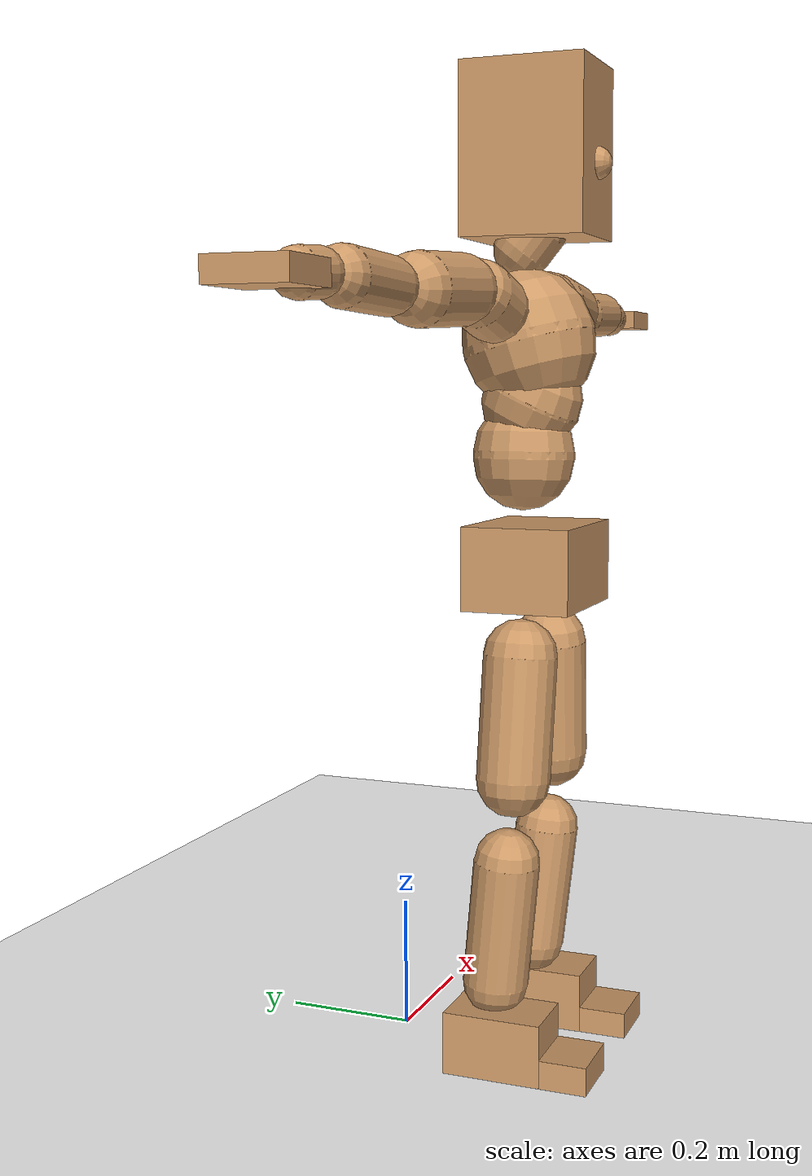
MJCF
<mujoco model="humanoid">
  <option integrator="implicitfast" />

  <visual>
    <global offwidth="1280" offheight="960" />
    <headlight active="1" ambient="0.34 0.34 0.34" diffuse="0.5 0.5 0.5" />
  </visual>

  <default>
    <joint damping="2" stiffness="2" armature="0.01" limited="true" solimplimit="0 .99 .01" />
    <geom condim="1" friction="0.7 0.005 0.0001" solimp=".99 .99 .003" solref="0.015 1" margin="0.001" rgba="0.8 0.6 .4 1" />
    <default class="smplcontact">
      <geom condim="3" friction="1. 0.005 0.0001" solref="0.015 1" solimp="0.98 0.98 0.001" priority="1" />
    </default>
    <default class="stiff_medium">
      <joint stiffness="10" />
    </default>
    <default class="stiff_medium_higher">
      <joint stiffness="50" />
    </default>
    <default class="stiff_high">
      <joint stiffness="100" />
    </default>
  </default>

  <asset>
    <texture type="skybox" builtin="gradient" rgb1="0.99 0.99 0.99" rgb2="0.608 0.828 0.892" width="100" />
    <texture builtin="flat" height="1278" mark="cross" markrgb="1 1 1" name="texgeom" random="0.01" rgb1="0.8 0.6 0.4" rgb2="0.8 0.6 0.4" type="cube" width="127" />
    <texture name="texplane" type="2d" builtin="checker" markrgb="1 1 1" rgb1="0.756 0.772 0.76" rgb2="0.6 0.6 0.6" width="100" height="100" />
    <material name="MatPlane" reflectance="0.5" texture="texplane" texrepeat="1 1" texuniform="true" />
    <material name="geom" texture="texgeom" texuniform="true" />
  </asset>

  <worldbody>
    <light name="tracking_light" pos="0 0 7" dir="0 0 -1" directional="true" cutoff="100" exponent="1" diffuse="1 1 1" specular="0.1 0.1 0.1" mode="trackcom" />
    <camera name="back" pos="0 3 2.4" xyaxes="-1 0 0 0 -1 2" mode="trackcom" />
    <camera name="side" pos="-3 0 2.4" xyaxes="0 -1 0 1 0 2" mode="trackcom" />
    <camera name="front_side" pos="-2.8 -2.8 0.8" xyaxes="0.5 -0.5 0 0.1 0.1 1" mode="trackcom" />
    <geom condim="3" name="floor" pos="0 0 0" rgba="1 1 1 1" size="100 100 .2" type="plane" material="MatPlane" />
    <body name="Pelvis" pos="-0.0018 -0.2233 0.763979" euler="90 0 0">
      <site name="Pelvis" size="0.01" />
      <freejoint name="Pelvis" />
      <geom type="box" pos="0 -0.0104433 -0.0054362" size="0.10566 0.0623148 0.0820372" quat="1.0000 0.0000 0.0000 0.0000" density="3165.830099" name="Pelvis" />
      <body name="L_Hip" pos="0.0686938 -0.0788861 -0.00672112">
        <joint name="L_Hip_x" type="hinge" pos="0 0 0" axis="1 0 0" stiffness="10" range="-160.0 22.92" class="stiff_medium" damping="15" />
        <joint name="L_Hip_y" type="hinge" pos="0 0 0" axis="0 1 0" stiffness="10" range="-70.0 70.0" class="stiff_medium" damping="10" />
        <joint name="L_Hip_z" type="hinge" pos="0 0 0" axis="0 0 1" stiffness="10" range="-28.65 90.0" class="stiff_medium" damping="10" />
        <geom type="capsule" density="2040.816327" fromto="0.00549856 -0.0596756 -0.000716199 0.0218101 -0.238864 -0.00286455" size="0.0560388" name="L_Hip" />
        <body name="L_Knee" pos="0.0273086 -0.298539 -0.00358075">
          <joint name="L_Knee_x" type="hinge" pos="0 0 0" axis="1 0 0" range="-5.16 171.89" damping="8" />
          <joint name="L_Knee_y" type="hinge" pos="0 0 0" axis="0 1 0" range="-4.58 6.88" damping="8" />
          <joint name="L_Knee_z" type="hinge" pos="0 0 0" axis="0 0 1" range="-6.88 4.58" damping="8" />
          <geom type="capsule" density="1234.567901" fromto="-0.00214453 -0.0633375 -0.00691486 -0.00866915 -0.253347 -0.0278414" size="0.0492959" name="L_Knee" />
          <body name="L_Ankle" pos="-0.0108137 -0.316684 -0.0347562">
            <joint name="L_Ankle_x" type="hinge" pos="0 0 0" axis="1 0 0" range="-45.84 45.84" class="stiff_medium" damping="6" />
            <joint name="L_Ankle_y" type="hinge" pos="0 0 0" axis="0 1 0" range="-74.48 22.92" class="stiff_medium" damping="3" />
            <joint name="L_Ankle_z" type="hinge" pos="0 0 0" axis="0 0 1" range="-4.58 4.58" class="stiff_medium" damping="6" />
            <geom type="box" pos="0.0230297 -0.0236228 0.0209907" size="0.0477397 0.0458618 0.0737278" quat="1.0000 0.0000 0.0000 0.0000" density="449.071558" name="L_Ankle" class="smplcontact" />
            <body name="L_Toe" pos="0.0260938 -0.0551527 0.103479">
              <joint name="L_Toe_x" type="hinge" pos="0 0 0" axis="1 0 0" range="-91.67 22.92" />
              <joint name="L_Toe_y" type="hinge" pos="0 0 0" axis="0 1 0" range="-4.58 4.58" />
              <joint name="L_Toe_z" type="hinge" pos="0 0 0" axis="0 0 1" range="-4.58 4.58" />
              <geom type="box" pos="-0.0029652 0.0054362 0.0215112" size="0.0472455 0.019768 0.0430223" quat="1.0000 0.0000 0.0000 0.0000" density="423.206892" name="L_Toe" class="smplcontact" />
            </body>
          </body>
        </body>
      </body>
      <body name="R_Hip" pos="-0.0669147 -0.0781093 -0.00425012">
        <joint name="R_Hip_x" type="hinge" pos="0 0 0" axis="1 0 0" stiffness="10" range="-160.0 22.92" class="stiff_medium" damping="15" />
        <joint name="R_Hip_y" type="hinge" pos="0 0 0" axis="0 1 0" stiffness="10" range="-70.0 70.0" class="stiff_medium" damping="10" />
        <joint name="R_Hip_z" type="hinge" pos="0 0 0" axis="0 0 1" stiffness="10" range="-90.0 28.65" class="stiff_medium" damping="10" />
        <geom type="capsule" density="2040.816327" fromto="-0.00613477 -0.060869 -0.00143615 -0.0243559 -0.243558 -0.00565328" size="0.0552187" name="R_Hip" />
        <body name="R_Knee" pos="-0.0304907 -0.304427 -0.00708943">
          <joint name="R_Knee_x" type="hinge" pos="0 0 0" axis="1 0 0" range="-5.16 171.89" damping="8" />
          <joint name="R_Knee_y" type="hinge" pos="0 0 0" axis="0 1 0" range="-6.88 4.58" damping="8" />
          <joint name="R_Knee_z" type="hinge" pos="0 0 0" axis="0 0 1" range="-4.58 6.88" damping="8" />
          <geom type="capsule" density="1234.567901" fromto="0.0025537 -0.063415 -0.0067705 0.0100331 -0.253584 -0.0269013" size="0.0492959" name="R_Knee" />
          <body name="R_Ankle" pos="0.0125868 -0.316999 -0.0336718">
            <joint name="R_Ankle_x" type="hinge" pos="0 0 0" axis="1 0 0" range="-45.84 45.84" class="stiff_medium" damping="6" />
            <joint name="R_Ankle_y" type="hinge" pos="0 0 0" axis="0 1 0" range="-22.92 74.48" class="stiff_medium" damping="3" />
            <joint name="R_Ankle_z" type="hinge" pos="0 0 0" axis="0 0 1" range="-4.58 4.58" class="stiff_medium" damping="6" />
            <geom type="box" pos="-0.0209541 -0.0171982 0.0222051" size="0.0477397 0.0472455 0.0750289" quat="1.0000 0.0000 0.0000 0.0000" density="434.700981" name="R_Ankle" class="smplcontact" />
            <body name="R_Toe" pos="-0.0251054 -0.047542 0.106949">
              <joint name="R_Toe_x" type="hinge" pos="0 0 0" axis="1 0 0" range="-91.67 22.92" />
              <joint name="R_Toe_y" type="hinge" pos="0 0 0" axis="0 1 0" range="-4.58 4.58" />
              <joint name="R_Toe_z" type="hinge" pos="0 0 0" axis="0 0 1" range="-4.58 4.58" />
              <geom type="box" pos="0.00415128 0.0044478 0.0196897" size="0.0473444 0.0213494 0.0427621" quat="1.0000 0.0000 0.0000 0.0000" density="407.384095" name="R_Toe" class="smplcontact" />
            </body>
          </body>
        </body>
      </body>
      <body name="Torso" pos="-0.002471 0.0940764 -0.0263903">
        <joint name="Torso_x" type="hinge" pos="0 0 0" axis="1 0 0" range="-25.78 57.3" class="stiff_medium" damping="15" />
        <joint name="Torso_y" type="hinge" pos="0 0 0" axis="0 1 0" range="-57.3 57.3" class="stiff_high" damping="20" />
        <joint name="Torso_z" type="hinge" pos="0 0 0" axis="0 0 1" range="-34.38 34.38" class="stiff_high" damping="20" />
        <geom type="capsule" density="2040.816327" fromto="0.00220203 0.0527924 0.000440406 0.00263619 0.0645146 0.000527238" size="0.0764694" name="Torso" />
        <body name="Spine" pos="0.00483775 0.117394 0.000967551">
          <joint name="Spine_x" type="hinge" pos="0 0 0" axis="1 0 0" stiffness="10" range="-25.78 57.3" class="stiff_medium" damping="15" />
          <joint name="Spine_y" type="hinge" pos="0 0 0" axis="0 1 0" stiffness="10" range="-57.3 57.3" class="stiff_high" damping="8" />
          <joint name="Spine_z" type="hinge" pos="0 0 0" axis="0 0 1" stiffness="20" range="-34.38 34.38" class="stiff_high" damping="12" />
          <geom type="capsule" density="2040.816327" fromto="0.000639711 0.0206792 0.00987056 0.000726542 0.0252812 0.0121282" size="0.0750772" name="Spine" />
          <body name="Chest" pos="0.00136625 0.0459604 0.0219987">
            <joint name="Chest_x" type="hinge" pos="0 0 0" axis="1 0 0" stiffness="10" range="-25.78 57.3" class="stiff_medium" damping="15" />
            <joint name="Chest_y" type="hinge" pos="0 0 0" axis="0 1 0" stiffness="10" range="-57.3 57.3" class="stiff_high" damping="8" />
            <joint name="Chest_z" type="hinge" pos="0 0 0" axis="0 0 1" stiffness="20" range="-34.38 34.38" class="stiff_high" damping="12" />
            <geom type="capsule" density="2040.816327" fromto="-0.000838074 0.0592284 -0.0149846 -0.000924906 0.0723399 -0.018371" size="0.0996389" name="Chest" />
            <body name="Neck" pos="-0.0026082 0.186108 -0.0357912">
              <joint name="Neck_x" type="hinge" pos="0 0 0" axis="1 0 0" range="-28.65 57.3" class="stiff_medium_higher" damping="10" />
              <joint name="Neck_y" type="hinge" pos="0 0 0" axis="0 1 0" range="-40.11 40.11" class="stiff_medium_higher" damping="10" />
              <joint name="Neck_z" type="hinge" pos="0 0 0" axis="0 0 1" range="-40.11 40.11" class="stiff_medium_higher" damping="10" />
              <geom type="capsule" density="1000" fromto="0.00086304 0.0112742 0.00893683 0.00355194 0.0451022 0.0356523" size="0.0433122" name="Neck" />
              <body name="Head" pos="0.00451475 0.0563819 0.0444941">
                <joint name="Head_x" type="hinge" pos="0 0 0" axis="1 0 0" range="-28.65 57.3" class="stiff_medium_higher" damping="2" />
                <joint name="Head_y" type="hinge" pos="0 0 0" axis="0 1 0" range="-40.11 40.11" class="stiff_medium_higher" damping="2" />
                <joint name="Head_z" type="hinge" pos="0 0 0" axis="0 0 1" range="-40.11 40.11" class="stiff_medium_higher" damping="2" />
                <geom type="box" pos="-0.00519456 0.0946021 -0.0143469" size="0.0749501 0.124624 0.0939968" quat="1.0000 0.0000 0.0000 0.0000" density="1018.069894" name="Head" />
                <geom type="capsule" name="nose" size="0.024736 0.012368" pos="0 0.0755953 0.06184" quat="1 0 0 0" mass="0" contype="0" conaffinity="0" />
              </body>
            </body>
            <body name="L_Thorax" pos="0.0784605 0.105655 -0.029941">
              <joint name="L_Thorax_x" type="hinge" pos="0 0 0" axis="1 0 0" range="-10.89 4.58" class="stiff_medium_higher" damping="20" />
              <joint name="L_Thorax_y" type="hinge" pos="0 0 0" axis="0 1 0" range="-28.65 17.19" class="stiff_medium_higher" damping="20" />
              <joint name="L_Thorax_z" type="hinge" pos="0 0 0" axis="0 0 1" range="-31.51 40.11" class="stiff_medium_higher" damping="20" />
              <geom type="capsule" density="1000" fromto="0.0156126 0.0052328 -0.00154826 0.0624516 0.0209316 -0.0060949" size="0.0511883" name="L_Thorax" />
              <body name="L_Shoulder" pos="0.0780642 0.0261644 -0.00764316">
                <joint name="L_Shoulder_x" type="hinge" pos="0 0 0" axis="1 0 0" range="-97.4 97.4" class="stiff_medium" damping="6" />
                <joint name="L_Shoulder_y" type="hinge" pos="0 0 0" axis="0 1 0" range="-108.86 80.21" class="stiff_medium" damping="6" />
                <joint name="L_Shoulder_z" type="hinge" pos="0 0 0" axis="0 0 1" range="-97.4 85.94" class="stiff_medium" damping="6" />
                <geom type="capsule" density="1000" fromto="0.0428155 -0.00215308 -0.00453771 0.171346 -0.00842285 -0.0181497" size="0.0488462" name="L_Shoulder" />
                <body name="L_Elbow" pos="0.214161 -0.0105759 -0.0226874">
                  <joint name="L_Elbow_x" type="hinge" pos="0 0 0" axis="1 0 0" range="-17.19 4.58" damping="5" />
                  <joint name="L_Elbow_y" type="hinge" pos="0 0 0" axis="0 1 0" range="-180.0 17.19" damping="5" />
                  <joint name="L_Elbow_z" type="hinge" pos="0 0 0" axis="0 0 1" range="-100.84 4.58" damping="5" />
                  <geom type="capsule" density="1000" fromto="0.0410835 0.00148523 -0.000161037 0.164499 0.00594007 -0.000738516" size="0.0382644" name="L_Elbow" />
                  <body name="L_Wrist" pos="0.205582 0.0074253 -0.000994032">
                    <joint name="L_Wrist_x" type="hinge" pos="0 0 0" axis="1 0 0" range="-180.0 22.92" />
                    <joint name="L_Wrist_y" type="hinge" pos="0 0 0" axis="0 1 0" range="-17.19 17.19" />
                    <joint name="L_Wrist_z" type="hinge" pos="0 0 0" axis="0 0 1" range="-22.92 22.92" />
                    <geom type="capsule" density="1000" fromto="0.0138599 -0.00131599 -0.00247497 0.0554383 -0.00535834 -0.0098997" size="0.0300446" name="L_Wrist" class="smplcontact" />
                    <body name="L_Hand" pos="0.0692991 -0.00676891 -0.0122804">
                      <joint name="L_Hand_x" type="hinge" pos="0 0 0" axis="1 0 0" range="-17.19 17.19" />
                      <joint name="L_Hand_y" type="hinge" pos="0 0 0" axis="0 1 0" range="-51.57 51.57" />
                      <joint name="L_Hand_z" type="hinge" pos="0 0 0" axis="0 0 1" range="-91.67 91.67" />
                      <geom type="box" pos="0.0425501 0.0009884 -0.00573272" size="0.0504905 0.0156167 0.0531759" quat="1.0000 0.0000 0.0000 0.0000" density="400.552564" name="L_Hand" class="smplcontact" />
                    </body>
                  </body>
                </body>
              </body>
            </body>
            <body name="R_Thorax" pos="-0.0812407 0.102851 -0.0344363">
              <joint name="R_Thorax_x" type="hinge" pos="0 0 0" axis="1 0 0" range="-10.89 4.58" class="stiff_medium_higher" damping="20" />
              <joint name="R_Thorax_y" type="hinge" pos="0 0 0" axis="0 1 0" range="-17.19 28.65" class="stiff_medium_higher" damping="20" />
              <joint name="R_Thorax_z" type="hinge" pos="0 0 0" axis="0 0 1" range="-40.11 31.51" class="stiff_medium_higher" damping="20" />
              <geom type="capsule" density="1000" fromto="-0.0164712 0.00557619 -0.00154002 -0.0658837 0.0223044 -0.00625823" size="0.0502058" name="R_Thorax" />
              <body name="R_Shoulder" pos="-0.0823512 0.0279776 -0.00779789">
                <joint name="R_Shoulder_x" type="hinge" pos="0 0 0" axis="1 0 0" range="-97.4 97.4" class="stiff_medium" damping="6" />
                <joint name="R_Shoulder_y" type="hinge" pos="0 0 0" axis="0 1 0" range="-80.21 108.86" class="stiff_medium" damping="6" />
                <joint name="R_Shoulder_z" type="hinge" pos="0 0 0" axis="0 0 1" range="-85.94 97.4" class="stiff_medium" damping="6" />
                <geom type="capsule" density="1000" fromto="-0.0418253 -0.0022318 -0.00355198 -0.167468 -0.00883155 -0.0141116" size="0.0501689" name="R_Shoulder" />
                <body name="R_Elbow" pos="-0.209294 -0.0109689 -0.0176636">
                  <joint name="R_Elbow_x" type="hinge" pos="0 0 0" axis="1 0 0" range="-17.19 4.58" damping="5" />
                  <joint name="R_Elbow_y" type="hinge" pos="0 0 0" axis="0 1 0" range="-17.19 180.0" damping="5" />
                  <joint name="R_Elbow_z" type="hinge" pos="0 0 0" axis="0 0 1" range="-4.58 100.84" damping="5" />
                  <geom type="capsule" density="1000" fromto="-0.0421557 0.00132769 -0.000907289 -0.168459 0.00512255 -0.00362969" size="0.0385478" name="R_Elbow" />
                  <body name="R_Wrist" pos="-0.210614 0.00645024 -0.00463145">
                    <joint name="R_Wrist_x" type="hinge" pos="0 0 0" axis="1 0 0" range="-180.0 22.92" />
                    <joint name="R_Wrist_y" type="hinge" pos="0 0 0" axis="0 1 0" range="-17.19 17.19" />
                    <joint name="R_Wrist_z" type="hinge" pos="0 0 0" axis="0 0 1" range="-22.92 22.92" />
                    <geom type="capsule" density="1000" fromto="-0.0139417 -0.00098624 -0.00173688 -0.0558502 -0.00403863 -0.00685169" size="0.0308005" name="R_Wrist" class="smplcontact" />
                    <body name="R_Hand" pos="-0.0697933 -0.00502497 -0.00849427">
                      <joint name="R_Hand_x" type="hinge" pos="0 0 0" axis="1 0 0" range="-17.19 17.19" />
                      <joint name="R_Hand_y" type="hinge" pos="0 0 0" axis="0 1 0" range="-51.57 51.57" />
                      <joint name="R_Hand_z" type="hinge" pos="0 0 0" axis="0 0 1" range="-91.67 91.67" />
                      <geom type="box" pos="-0.0398746 -0.00088956 -0.00780836" size="0.0491096 0.0162098 0.0539666" quat="1.0000 0.0000 0.0000 0.0000" density="403.679611" name="R_Hand" class="smplcontact" />
                    </body>
                  </body>
                </body>
              </body>
            </body>
          </body>
        </body>
      </body>
    </body>
  </worldbody>
  <actuator>
    <general name="L_Hip_x" joint="L_Hip_x" biastype="affine" gainprm="287.33006409732246" biasprm="-215.3247604770444 -180 -2.0" ctrllimited="true" ctrlrange="-1 1" forcerange="-360 360" />
    <general name="L_Hip_y" joint="L_Hip_y" biastype="affine" gainprm="219.9114857512855" biasprm="0.0 -180 -2.0" ctrllimited="true" ctrlrange="-1 1" forcerange="-360 360" />
    <general name="L_Hip_z" joint="L_Hip_z" biastype="affine" gainprm="186.3749841742145" biasprm="96.3683546488669 -180 -2.0" ctrllimited="true" ctrlrange="-1 1" forcerange="-360 360" />
    <general name="L_Knee_x" joint="L_Knee_x" biastype="affine" gainprm="278.10948965903646" biasprm="261.8988715665131 -180 -2.0" ctrllimited="true" ctrlrange="-1 1" forcerange="-360 360" />
    <general name="L_Knee_y" joint="L_Knee_y" biastype="affine" gainprm="18.001325905069514" biasprm="3.612831551628262 -180 -2.0" ctrllimited="true" ctrlrange="-1 1" forcerange="-360 360" />
    <general name="L_Knee_z" joint="L_Knee_z" biastype="affine" gainprm="18.001325905069514" biasprm="-3.612831551628262 -180 -2.0" ctrllimited="true" ctrlrange="-1 1" forcerange="-360 360" />
    <general name="L_Ankle_x" joint="L_Ankle_x" biastype="affine" gainprm="72.00530362027807" biasprm="0.0 -90 -2.0" ctrllimited="true" ctrlrange="-1 1" forcerange="-180 180" />
    <general name="L_Ankle_y" joint="L_Ankle_y" biastype="affine" gainprm="76.49778111491148" biasprm="-40.49512930477244 -90 -2.0" ctrllimited="true" ctrlrange="-1 1" forcerange="-180 180" />
    <general name="L_Ankle_z" joint="L_Ankle_z" biastype="affine" gainprm="7.1942471767206255" biasprm="0.0 -90 -2.0" ctrllimited="true" ctrlrange="-1 1" forcerange="-180 180" />
    <general name="L_Toe_x" joint="L_Toe_x" biastype="affine" gainprm="71.99902043497087" biasprm="-43.19689898685965 -72 -0.8" ctrllimited="true" ctrlrange="-1 1" forcerange="-144 144" />
    <general name="L_Toe_y" joint="L_Toe_y" biastype="affine" gainprm="5.755397741376501" biasprm="0.0 -72 -0.8" ctrllimited="true" ctrlrange="-1 1" forcerange="-144 144" />
    <general name="L_Toe_z" joint="L_Toe_z" biastype="affine" gainprm="5.755397741376501" biasprm="0.0 -72 -0.8" ctrllimited="true" ctrlrange="-1 1" forcerange="-144 144" />
    <general name="R_Hip_x" joint="R_Hip_x" biastype="affine" gainprm="287.33006409732246" biasprm="-215.3247604770444 -180 -2.0" ctrllimited="true" ctrlrange="-1 1" forcerange="-360 360" />
    <general name="R_Hip_y" joint="R_Hip_y" biastype="affine" gainprm="219.9114857512855" biasprm="0.0 -180 -2.0" ctrllimited="true" ctrlrange="-1 1" forcerange="-360 360" />
    <general name="R_Hip_z" joint="R_Hip_z" biastype="affine" gainprm="186.3749841742145" biasprm="-96.3683546488669 -180 -2.0" ctrllimited="true" ctrlrange="-1 1" forcerange="-360 360" />
    <general name="R_Knee_x" joint="R_Knee_x" biastype="affine" gainprm="278.10948965903646" biasprm="261.8988715665131 -180 -2.0" ctrllimited="true" ctrlrange="-1 1" forcerange="-360 360" />
    <general name="R_Knee_y" joint="R_Knee_y" biastype="affine" gainprm="18.001325905069514" biasprm="-3.612831551628262 -180 -2.0" ctrllimited="true" ctrlrange="-1 1" forcerange="-360 360" />
    <general name="R_Knee_z" joint="R_Knee_z" biastype="affine" gainprm="18.001325905069514" biasprm="3.612831551628262 -180 -2.0" ctrllimited="true" ctrlrange="-1 1" forcerange="-360 360" />
    <general name="R_Ankle_x" joint="R_Ankle_x" biastype="affine" gainprm="72.00530362027807" biasprm="0.0 -90 -2.0" ctrllimited="true" ctrlrange="-1 1" forcerange="-180 180" />
    <general name="R_Ankle_y" joint="R_Ankle_y" biastype="affine" gainprm="76.49778111491148" biasprm="40.49512930477244 -90 -2.0" ctrllimited="true" ctrlrange="-1 1" forcerange="-180 180" />
    <general name="R_Ankle_z" joint="R_Ankle_z" biastype="affine" gainprm="7.1942471767206255" biasprm="0.0 -90 -2.0" ctrllimited="true" ctrlrange="-1 1" forcerange="-180 180" />
    <general name="R_Toe_x" joint="R_Toe_x" biastype="affine" gainprm="71.99902043497087" biasprm="-43.19689898685965 -72 -0.8" ctrllimited="true" ctrlrange="-1 1" forcerange="-144 144" />
    <general name="R_Toe_y" joint="R_Toe_y" biastype="affine" gainprm="5.755397741376501" biasprm="0.0 -72 -0.8" ctrllimited="true" ctrlrange="-1 1" forcerange="-144 144" />
    <general name="R_Toe_z" joint="R_Toe_z" biastype="affine" gainprm="5.755397741376501" biasprm="0.0 -72 -0.8" ctrllimited="true" ctrlrange="-1 1" forcerange="-144 144" />
    <general name="Torso_x" joint="Torso_x" biastype="affine" gainprm="174.00234510682668" biasprm="66.0153336274335 -240 -4.0" ctrllimited="true" ctrlrange="-1 1" forcerange="-360 360" />
    <general name="Torso_y" joint="Torso_y" biastype="affine" gainprm="240.0176787342602" biasprm="0.0 -240 -4.0" ctrllimited="true" ctrlrange="-1 1" forcerange="-360 360" />
    <general name="Torso_z" joint="Torso_z" biastype="affine" gainprm="144.01060724055614" biasprm="0.0 -240 -4.0" ctrllimited="true" ctrlrange="-1 1" forcerange="-360 360" />
    <general name="Spine_x" joint="Spine_x" biastype="affine" gainprm="174.00234510682668" biasprm="66.0153336274335 -240 -4.0" ctrllimited="true" ctrlrange="-1 1" forcerange="-360 360" />
    <general name="Spine_y" joint="Spine_y" biastype="affine" gainprm="240.0176787342602" biasprm="0.0 -240 -4.0" ctrllimited="true" ctrlrange="-1 1" forcerange="-360 360" />
    <general name="Spine_z" joint="Spine_z" biastype="affine" gainprm="144.01060724055614" biasprm="0.0 -240 -4.0" ctrllimited="true" ctrlrange="-1 1" forcerange="-360 360" />
    <general name="Chest_x" joint="Chest_x" biastype="affine" gainprm="174.00234510682668" biasprm="66.0153336274335 -240 -4.0" ctrllimited="true" ctrlrange="-1 1" forcerange="-360 360" />
    <general name="Chest_y" joint="Chest_y" biastype="affine" gainprm="240.0176787342602" biasprm="0.0 -240 -4.0" ctrllimited="true" ctrlrange="-1 1" forcerange="-360 360" />
    <general name="Chest_z" joint="Chest_z" biastype="affine" gainprm="144.01060724055614" biasprm="0.0 -240 -4.0" ctrllimited="true" ctrlrange="-1 1" forcerange="-360 360" />
    <general name="Neck_x" joint="Neck_x" biastype="affine" gainprm="27.00198885760427" biasprm="9.000662952534757 -36 -0.8" ctrllimited="true" ctrlrange="-1 1" forcerange="-72 72" />
    <general name="Neck_y" joint="Neck_y" biastype="affine" gainprm="25.20185626709732" biasprm="0.0 -36 -0.8" ctrllimited="true" ctrlrange="-1 1" forcerange="-72 72" />
    <general name="Neck_z" joint="Neck_z" biastype="affine" gainprm="25.20185626709732" biasprm="0.0 -36 -0.8" ctrllimited="true" ctrlrange="-1 1" forcerange="-72 72" />
    <general name="Head_x" joint="Head_x" biastype="affine" gainprm="18.001325905069514" biasprm="6.000441968356505 -24 -0.8" ctrllimited="true" ctrlrange="-1 1" forcerange="-48 48" />
    <general name="Head_y" joint="Head_y" biastype="affine" gainprm="16.801237511398213" biasprm="0.0 -24 -0.8" ctrllimited="true" ctrlrange="-1 1" forcerange="-48 48" />
    <general name="Head_z" joint="Head_z" biastype="affine" gainprm="16.801237511398213" biasprm="0.0 -24 -0.8" ctrllimited="true" ctrlrange="-1 1" forcerange="-48 48" />
    <general name="L_Thorax_x" joint="L_Thorax_x" biastype="affine" gainprm="16.200146117011364" biasprm="-6.6078165480505335 -120 -1.6" ctrllimited="true" ctrlrange="-1 1" forcerange="-240 240" />
    <general name="L_Thorax_y" joint="L_Thorax_y" biastype="affine" gainprm="48.00353574685204" biasprm="-12.00088393671301 -120 -1.6" ctrllimited="true" ctrlrange="-1 1" forcerange="-240 240" />
    <general name="L_Thorax_z" joint="L_Thorax_z" biastype="affine" gainprm="75.00028861670033" biasprm="9.00589894029074 -120 -1.6" ctrllimited="true" ctrlrange="-1 1" forcerange="-240 240" />
    <general name="L_Shoulder_x" joint="L_Shoulder_x" biastype="affine" gainprm="81.5976331892389" biasprm="0.0 -48 -1.6" ctrllimited="true" ctrlrange="-1 1" forcerange="-96 96" />
    <general name="L_Shoulder_y" joint="L_Shoulder_y" biastype="affine" gainprm="79.19745640189629" biasprm="-12.00088393671301 -48 -1.6" ctrllimited="true" ctrlrange="-1 1" forcerange="-96 96" />
    <general name="L_Shoulder_z" joint="L_Shoulder_z" biastype="affine" gainprm="76.79727961455369" biasprm="-4.800353574685214 -48 -1.6" ctrllimited="true" ctrlrange="-1 1" forcerange="-96 96" />
    <general name="L_Elbow_x" joint="L_Elbow_x" biastype="affine" gainprm="13.67849441372996" biasprm="-7.923096672353461 -72 -0.8" ctrllimited="true" ctrlrange="-1 1" forcerange="-144 144" />
    <general name="L_Elbow_y" joint="L_Elbow_y" biastype="affine" gainprm="123.89813107227425" biasprm="-102.29653998619085 -72 -0.8" ctrllimited="true" ctrlrange="-1 1" forcerange="-144 144" />
    <general name="L_Elbow_z" joint="L_Elbow_z" biastype="affine" gainprm="66.23733950828719" biasprm="-60.4819417669107 -72 -0.8" ctrllimited="true" ctrlrange="-1 1" forcerange="-144 144" />
    <general name="L_Wrist_x" joint="L_Wrist_x" biastype="affine" gainprm="21.24973270888136" biasprm="-16.449379134196157 -12 -0.8" ctrllimited="true" ctrlrange="-1 1" forcerange="-24 24" />
    <general name="L_Wrist_y" joint="L_Wrist_y" biastype="affine" gainprm="3.6002651810139037" biasprm="0.0 -12 -0.8" ctrllimited="true" ctrlrange="-1 1" forcerange="-24 24" />
    <general name="L_Wrist_z" joint="L_Wrist_z" biastype="affine" gainprm="4.800353574685205" biasprm="0.0 -12 -0.8" ctrllimited="true" ctrlrange="-1 1" forcerange="-24 24" />
    <general name="L_Hand_x" joint="L_Hand_x" biastype="affine" gainprm="3.6002651810139037" biasprm="0.0 -12 -0.8" ctrllimited="true" ctrlrange="-1 1" forcerange="-24 24" />
    <general name="L_Hand_y" joint="L_Hand_y" biastype="affine" gainprm="10.800795543041708" biasprm="0.0 -12 -0.8" ctrllimited="true" ctrlrange="-1 1" forcerange="-24 24" />
    <general name="L_Hand_z" joint="L_Hand_z" biastype="affine" gainprm="19.199319903638422" biasprm="0.0 -12 -0.8" ctrllimited="true" ctrlrange="-1 1" forcerange="-24 24" />
    <general name="R_Thorax_x" joint="R_Thorax_x" biastype="affine" gainprm="16.200146117011364" biasprm="-6.6078165480505335 -120 -1.6" ctrllimited="true" ctrlrange="-1 1" forcerange="-240 240" />
    <general name="R_Thorax_y" joint="R_Thorax_y" biastype="affine" gainprm="48.00353574685204" biasprm="12.000883936713002 -120 -1.6" ctrllimited="true" ctrlrange="-1 1" forcerange="-240 240" />
    <general name="R_Thorax_z" joint="R_Thorax_z" biastype="affine" gainprm="75.00028861670033" biasprm="-9.00589894029074 -120 -1.6" ctrllimited="true" ctrlrange="-1 1" forcerange="-240 240" />
    <general name="R_Shoulder_x" joint="R_Shoulder_x" biastype="affine" gainprm="81.5976331892389" biasprm="0.0 -48 -1.6" ctrllimited="true" ctrlrange="-1 1" forcerange="-96 96" />
    <general name="R_Shoulder_y" joint="R_Shoulder_y" biastype="affine" gainprm="79.19745640189629" biasprm="12.00088393671301 -48 -1.6" ctrllimited="true" ctrlrange="-1 1" forcerange="-96 96" />
    <general name="R_Shoulder_z" joint="R_Shoulder_z" biastype="affine" gainprm="76.79727961455369" biasprm="4.800353574685204 -48 -1.6" ctrllimited="true" ctrlrange="-1 1" forcerange="-96 96" />
    <general name="R_Elbow_x" joint="R_Elbow_x" biastype="affine" gainprm="13.67849441372996" biasprm="-7.923096672353461 -72 -0.8" ctrllimited="true" ctrlrange="-1 1" forcerange="-144 144" />
    <general name="R_Elbow_y" joint="R_Elbow_y" biastype="affine" gainprm="123.89813107227425" biasprm="102.29653998619085 -72 -0.8" ctrllimited="true" ctrlrange="-1 1" forcerange="-144 144" />
    <general name="R_Elbow_z" joint="R_Elbow_z" biastype="affine" gainprm="66.23733950828719" biasprm="60.481941766910694 -72 -0.8" ctrllimited="true" ctrlrange="-1 1" forcerange="-144 144" />
    <general name="R_Wrist_x" joint="R_Wrist_x" biastype="affine" gainprm="21.24973270888136" biasprm="-16.449379134196157 -12 -0.8" ctrllimited="true" ctrlrange="-1 1" forcerange="-24 24" />
    <general name="R_Wrist_y" joint="R_Wrist_y" biastype="affine" gainprm="3.6002651810139037" biasprm="0.0 -12 -0.8" ctrllimited="true" ctrlrange="-1 1" forcerange="-24 24" />
    <general name="R_Wrist_z" joint="R_Wrist_z" biastype="affine" gainprm="4.800353574685205" biasprm="0.0 -12 -0.8" ctrllimited="true" ctrlrange="-1 1" forcerange="-24 24" />
    <general name="R_Hand_x" joint="R_Hand_x" biastype="affine" gainprm="3.6002651810139037" biasprm="0.0 -12 -0.8" ctrllimited="true" ctrlrange="-1 1" forcerange="-24 24" />
    <general name="R_Hand_y" joint="R_Hand_y" biastype="affine" gainprm="10.800795543041708" biasprm="0.0 -12 -0.8" ctrllimited="true" ctrlrange="-1 1" forcerange="-24 24" />
    <general name="R_Hand_z" joint="R_Hand_z" biastype="affine" gainprm="19.199319903638422" biasprm="0.0 -12 -0.8" ctrllimited="true" ctrlrange="-1 1" forcerange="-24 24" />
  </actuator>
  <contact>
    <exclude body1="Torso" body2="Chest" />
    <exclude body1="Head" body2="Chest" />
    <exclude body1="R_Knee" body2="R_Toe" />
    <exclude body1="R_Knee" body2="L_Ankle" />
    <exclude body1="R_Knee" body2="L_Toe" />
    <exclude body1="L_Knee" body2="L_Toe" />
    <exclude body1="L_Knee" body2="R_Ankle" />
    <exclude body1="L_Knee" body2="R_Toe" />
    <exclude body1="L_Shoulder" body2="Chest" />
    <exclude body1="R_Shoulder" body2="Chest" />
  </contact>
  <sensor>
    <framelinvel name="sensor_Pelvis_framelinvel" objtype="xbody" objname="Pelvis" />
    <framelinvel name="sensor_L_Hip_framelinvel" objtype="xbody" objname="L_Hip" />
    <framelinvel name="sensor_L_Knee_framelinvel" objtype="xbody" objname="L_Knee" />
    <framelinvel name="sensor_L_Ankle_framelinvel" objtype="xbody" objname="L_Ankle" />
    <framelinvel name="sensor_L_Toe_framelinvel" objtype="xbody" objname="L_Toe" />
    <framelinvel name="sensor_R_Hip_framelinvel" objtype="xbody" objname="R_Hip" />
    <framelinvel name="sensor_R_Knee_framelinvel" objtype="xbody" objname="R_Knee" />
    <framelinvel name="sensor_R_Ankle_framelinvel" objtype="xbody" objname="R_Ankle" />
    <framelinvel name="sensor_R_Toe_framelinvel" objtype="xbody" objname="R_Toe" />
    <framelinvel name="sensor_Torso_framelinvel" objtype="xbody" objname="Torso" />
    <framelinvel name="sensor_Spine_framelinvel" objtype="xbody" objname="Spine" />
    <framelinvel name="sensor_Chest_framelinvel" objtype="xbody" objname="Chest" />
    <framelinvel name="sensor_Neck_framelinvel" objtype="xbody" objname="Neck" />
    <framelinvel name="sensor_Head_framelinvel" objtype="xbody" objname="Head" />
    <framelinvel name="sensor_L_Thorax_framelinvel" objtype="xbody" objname="L_Thorax" />
    <framelinvel name="sensor_L_Shoulder_framelinvel" objtype="xbody" objname="L_Shoulder" />
    <framelinvel name="sensor_L_Elbow_framelinvel" objtype="xbody" objname="L_Elbow" />
    <framelinvel name="sensor_L_Wrist_framelinvel" objtype="xbody" objname="L_Wrist" />
    <framelinvel name="sensor_L_Hand_framelinvel" objtype="xbody" objname="L_Hand" />
    <framelinvel name="sensor_R_Thorax_framelinvel" objtype="xbody" objname="R_Thorax" />
    <framelinvel name="sensor_R_Shoulder_framelinvel" objtype="xbody" objname="R_Shoulder" />
    <framelinvel name="sensor_R_Elbow_framelinvel" objtype="xbody" objname="R_Elbow" />
    <framelinvel name="sensor_R_Wrist_framelinvel" objtype="xbody" objname="R_Wrist" />
    <framelinvel name="sensor_R_Hand_framelinvel" objtype="xbody" objname="R_Hand" />
    <frameangvel name="sensor_Pelvis_frameangvel" objtype="xbody" objname="Pelvis" />
    <frameangvel name="sensor_L_Hip_frameangvel" objtype="xbody" objname="L_Hip" />
    <frameangvel name="sensor_L_Knee_frameangvel" objtype="xbody" objname="L_Knee" />
    <frameangvel name="sensor_L_Ankle_frameangvel" objtype="xbody" objname="L_Ankle" />
    <frameangvel name="sensor_L_Toe_frameangvel" objtype="xbody" objname="L_Toe" />
    <frameangvel name="sensor_R_Hip_frameangvel" objtype="xbody" objname="R_Hip" />
    <frameangvel name="sensor_R_Knee_frameangvel" objtype="xbody" objname="R_Knee" />
    <frameangvel name="sensor_R_Ankle_frameangvel" objtype="xbody" objname="R_Ankle" />
    <frameangvel name="sensor_R_Toe_frameangvel" objtype="xbody" objname="R_Toe" />
    <frameangvel name="sensor_Torso_frameangvel" objtype="xbody" objname="Torso" />
    <frameangvel name="sensor_Spine_frameangvel" objtype="xbody" objname="Spine" />
    <frameangvel name="sensor_Chest_frameangvel" objtype="xbody" objname="Chest" />
    <frameangvel name="sensor_Neck_frameangvel" objtype="xbody" objname="Neck" />
    <frameangvel name="sensor_Head_frameangvel" objtype="xbody" objname="Head" />
    <frameangvel name="sensor_L_Thorax_frameangvel" objtype="xbody" objname="L_Thorax" />
    <frameangvel name="sensor_L_Shoulder_frameangvel" objtype="xbody" objname="L_Shoulder" />
    <frameangvel name="sensor_L_Elbow_frameangvel" objtype="xbody" objname="L_Elbow" />
    <frameangvel name="sensor_L_Wrist_frameangvel" objtype="xbody" objname="L_Wrist" />
    <frameangvel name="sensor_L_Hand_frameangvel" objtype="xbody" objname="L_Hand" />
    <frameangvel name="sensor_R_Thorax_frameangvel" objtype="xbody" objname="R_Thorax" />
    <frameangvel name="sensor_R_Shoulder_frameangvel" objtype="xbody" objname="R_Shoulder" />
    <frameangvel name="sensor_R_Elbow_frameangvel" objtype="xbody" objname="R_Elbow" />
    <frameangvel name="sensor_R_Wrist_frameangvel" objtype="xbody" objname="R_Wrist" />
    <frameangvel name="sensor_R_Hand_frameangvel" objtype="xbody" objname="R_Hand" />
    <subtreelinvel name="Chest_subtreelinvel" body="Chest" />
    <gyro name="Pelvis_gyro" site="Pelvis" />
  </sensor>
</mujoco>
